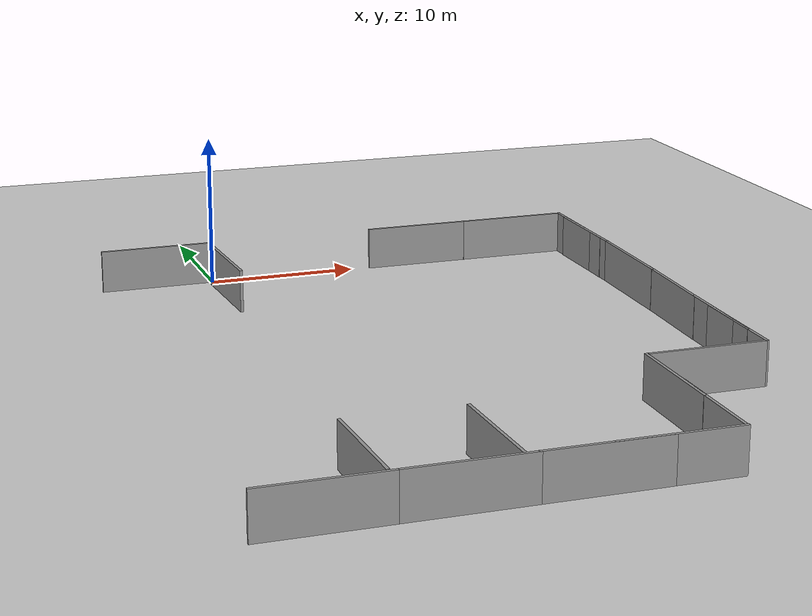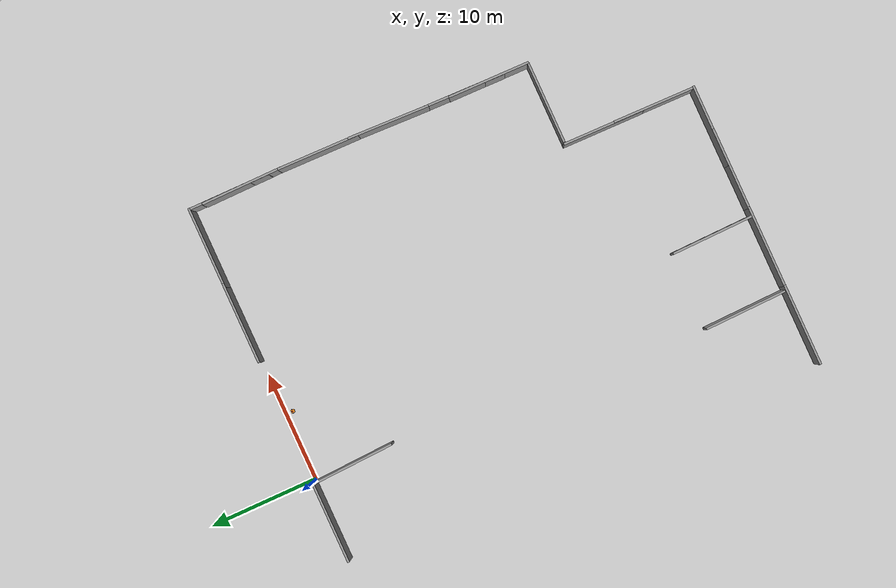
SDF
<sdf version="1.7">
 <world name="default">
  <model name="ground_plane">
   <static>1</static>
   <link name="link">
    <collision name="collision">
     <geometry><plane><normal>0 0 1</normal><size>100 100</size></plane></geometry>
     <surface><friction><ode><mu>100</mu><mu2>50</mu2></ode></friction></surface>
    </collision>
    <visual name="visual">
     <cast_shadows>0</cast_shadows>
     <geometry><plane><normal>0 0 1</normal><size>100 100</size></plane></geometry>
     <material>
      <script><uri>file://media/materials/scripts/gazebo.material</uri><name>Gazebo/Grey</name></script>
     </material>
    </visual>
   </link>
  </model>
  <model name="grey_wall">
   <static>1</static>
   <link name="link">
    <pose>0 0 1.4 0 -0 0</pose>
    <collision name="collision"><geometry><box><size>7.5 0.2 2.8</size></box></geometry></collision>
    <visual name="visual">
     <cast_shadows>0</cast_shadows>
     <geometry><box><size>7.5 0.2 2.8</size></box></geometry>
     <material>
      <script>
       <uri>model://grey_wall/materials/scripts</uri>
       <uri>model://grey_wall/materials/textures</uri>
       <name>vrc/grey_wall</name>
      </script>
     </material>
    </visual>
   </link>
   <pose>15.0322 -0.046799 0 0 -0 0</pose>
  </model>
  <model name="grey_wall_0">
   <static>1</static>
   <link name="link">
    <pose>0 0 1.4 0 -0 0</pose>
    <collision name="collision"><geometry><box><size>7.5 0.2 2.8</size></box></geometry></collision>
    <visual name="visual">
     <cast_shadows>0</cast_shadows>
     <geometry><box><size>7.5 0.2 2.8</size></box></geometry>
     <material>
      <script>
       <uri>model://grey_wall/materials/scripts</uri>
       <uri>model://grey_wall/materials/textures</uri>
       <name>vrc/grey_wall</name>
      </script>
     </material>
    </visual>
   </link>
   <pose>22.1133 -0.054691 0 0 -0 0</pose>
  </model>
  <model name="grey_wall_1">
   <static>1</static>
   <link name="link">
    <pose>0 0 1.4 0 -0 0</pose>
    <collision name="collision"><geometry><box><size>7.5 0.2 2.8</size></box></geometry></collision>
    <visual name="visual">
     <cast_shadows>0</cast_shadows>
     <geometry><box><size>7.5 0.2 2.8</size></box></geometry>
     <material>
      <script>
       <uri>model://grey_wall/materials/scripts</uri>
       <uri>model://grey_wall/materials/textures</uri>
       <name>vrc/grey_wall</name>
      </script>
     </material>
    </visual>
   </link>
   <pose>-3.81044 0.066326 0 0 -0 0</pose>
  </model>
  <model name="grey_wall_18">
   <static>1</static>
   <link name="link">
    <pose>0 0 1.4 0 -0 0</pose>
    <collision name="collision"><geometry><box><size>7.5 0.2 2.8</size></box></geometry></collision>
    <visual name="visual">
     <cast_shadows>0</cast_shadows>
     <geometry><box><size>7.5 0.2 2.8</size></box></geometry>
     <material>
      <script>
       <uri>model://grey_wall/materials/scripts</uri>
       <uri>model://grey_wall/materials/textures</uri>
       <name>vrc/grey_wall</name>
      </script>
     </material>
    </visual>
   </link>
   <pose>-5.17967 -43.942 0 0 -0 0</pose>
  </model>
  <model name="grey_wall_19">
   <static>1</static>
   <link name="link">
    <pose>0 0 1.4 0 -0 0</pose>
    <collision name="collision"><geometry><box><size>7.5 0.2 2.8</size></box></geometry></collision>
    <visual name="visual">
     <cast_shadows>0</cast_shadows>
     <geometry><box><size>7.5 0.2 2.8</size></box></geometry>
     <material>
      <script>
       <uri>model://grey_wall/materials/scripts</uri>
       <uri>model://grey_wall/materials/textures</uri>
       <name>vrc/grey_wall</name>
      </script>
     </material>
    </visual>
   </link>
   <pose>2.24043 -43.9352 0 0 -0 0</pose>
  </model>
  <model name="grey_wall_20">
   <static>1</static>
   <link name="link">
    <pose>0 0 1.4 0 -0 0</pose>
    <collision name="collision"><geometry><box><size>7.5 0.2 2.8</size></box></geometry></collision>
    <visual name="visual">
     <cast_shadows>0</cast_shadows>
     <geometry><box><size>7.5 0.2 2.8</size></box></geometry>
     <material>
      <script>
       <uri>model://grey_wall/materials/scripts</uri>
       <uri>model://grey_wall/materials/textures</uri>
       <name>vrc/grey_wall</name>
      </script>
     </material>
    </visual>
   </link>
   <pose>9.60015 -43.9275 0 0 -0 0</pose>
  </model>
  <model name="grey_wall_22">
   <static>1</static>
   <link name="link">
    <pose>0 0 1.4 0 -0 0</pose>
    <collision name="collision"><geometry><box><size>7.5 0.2 2.8</size></box></geometry></collision>
    <visual name="visual">
     <cast_shadows>0</cast_shadows>
     <geometry><box><size>7.5 0.2 2.8</size></box></geometry>
     <material>
      <script>
       <uri>model://grey_wall/materials/scripts</uri>
       <uri>model://grey_wall/materials/textures</uri>
       <name>vrc/grey_wall</name>
      </script>
     </material>
    </visual>
   </link>
   <pose>13.6683 -43.9149 0 0 -0 0</pose>
  </model>
  <model name="grey_wall_23">
   <static>1</static>
   <link name="link">
    <pose>0 0 1.4 0 -0 0</pose>
    <collision name="collision"><geometry><box><size>7.5 0.2 2.8</size></box></geometry></collision>
    <visual name="visual">
     <cast_shadows>0</cast_shadows>
     <geometry><box><size>7.5 0.2 2.8</size></box></geometry>
     <material>
      <script>
       <uri>model://grey_wall/materials/scripts</uri>
       <uri>model://grey_wall/materials/textures</uri>
       <name>vrc/grey_wall</name>
      </script>
     </material>
    </visual>
   </link>
   <pose>17.3477 -40.1778 0 0 0 -1.59017</pose>
  </model>
  <model name="grey_wall_24">
   <static>1</static>
   <link name="link">
    <pose>0 0 1.4 0 -0 0</pose>
    <collision name="collision"><geometry><box><size>7.5 0.2 2.8</size></box></geometry></collision>
    <visual name="visual">
     <cast_shadows>0</cast_shadows>
     <geometry><box><size>7.5 0.2 2.8</size></box></geometry>
     <material>
      <script>
       <uri>model://grey_wall/materials/scripts</uri>
       <uri>model://grey_wall/materials/textures</uri>
       <name>vrc/grey_wall</name>
      </script>
     </material>
    </visual>
   </link>
   <pose>25.2089 -28.1287 0 0 0 -1.5876</pose>
  </model>
  <model name="grey_wall_25">
   <static>1</static>
   <link name="link">
    <pose>0 0 1.4 0 -0 0</pose>
    <collision name="collision"><geometry><box><size>7.5 0.2 2.8</size></box></geometry></collision>
    <visual name="visual">
     <cast_shadows>0</cast_shadows>
     <geometry><box><size>7.5 0.2 2.8</size></box></geometry>
     <material>
      <script>
       <uri>model://grey_wall/materials/scripts</uri>
       <uri>model://grey_wall/materials/textures</uri>
       <name>vrc/grey_wall</name>
      </script>
     </material>
    </visual>
   </link>
   <pose>25.4883 -18.7407 0 0 0 -1.61009</pose>
  </model>
  <model name="grey_wall_26">
   <static>1</static>
   <link name="link">
    <pose>0 0 1.4 0 -0 0</pose>
    <collision name="collision"><geometry><box><size>7.5 0.2 2.8</size></box></geometry></collision>
    <visual name="visual">
     <cast_shadows>0</cast_shadows>
     <geometry><box><size>7.5 0.2 2.8</size></box></geometry>
     <material>
      <script>
       <uri>model://grey_wall/materials/scripts</uri>
       <uri>model://grey_wall/materials/textures</uri>
       <name>vrc/grey_wall</name>
      </script>
     </material>
    </visual>
   </link>
   <pose>25.6675 -12.1685 0 0 0 -1.59098</pose>
  </model>
  <model name="grey_wall_27">
   <static>1</static>
   <link name="link">
    <pose>0 0 1.4 0 -0 0</pose>
    <collision name="collision"><geometry><box><size>7.5 0.2 2.8</size></box></geometry></collision>
    <visual name="visual">
     <cast_shadows>0</cast_shadows>
     <geometry><box><size>7.5 0.2 2.8</size></box></geometry>
     <material>
      <script>
       <uri>model://grey_wall/materials/scripts</uri>
       <uri>model://grey_wall/materials/textures</uri>
       <name>vrc/grey_wall</name>
      </script>
     </material>
    </visual>
   </link>
   <pose>25.2654 -25.8422 -0 0 0 -1.59708</pose>
  </model>
  <model name="grey_wall_28">
   <static>1</static>
   <link name="link">
    <pose>0 0 1.4 0 -0 0</pose>
    <collision name="collision"><geometry><box><size>7.5 0.2 2.8</size></box></geometry></collision>
    <visual name="visual">
     <cast_shadows>0</cast_shadows>
     <geometry><box><size>7.5 0.2 2.8</size></box></geometry>
     <material>
      <script>
       <uri>model://grey_wall/materials/scripts</uri>
       <uri>model://grey_wall/materials/textures</uri>
       <name>vrc/grey_wall</name>
      </script>
     </material>
    </visual>
   </link>
   <pose>25.7264 -5.00568 0 0 0 -1.56465</pose>
  </model>
  <model name="grey_wall_29">
   <static>1</static>
   <link name="link">
    <pose>0 0 1.4 0 -0 0</pose>
    <collision name="collision"><geometry><box><size>7.5 0.2 2.8</size></box></geometry></collision>
    <visual name="visual">
     <cast_shadows>0</cast_shadows>
     <geometry><box><size>7.5 0.2 2.8</size></box></geometry>
     <material>
      <script>
       <uri>model://grey_wall/materials/scripts</uri>
       <uri>model://grey_wall/materials/textures</uri>
       <name>vrc/grey_wall</name>
      </script>
     </material>
    </visual>
   </link>
   <pose>25.7392 -3.78871 0 0 0 -1.5746</pose>
  </model>
  <model name="grey_wall_0_clone">
   <static>1</static>
   <link name="link">
    <pose>0 0 1.4 0 -0 0</pose>
    <collision name="collision"><geometry><box><size>7.5 0.2 2.8</size></box></geometry></collision>
    <visual name="visual">
     <cast_shadows>0</cast_shadows>
     <geometry><box><size>7.5 0.2 2.8</size></box></geometry>
     <material>
      <script>
       <uri>model://grey_wall/materials/scripts</uri>
       <uri>model://grey_wall/materials/textures</uri>
       <name>vrc/grey_wall</name>
      </script>
     </material>
    </visual>
   </link>
   <pose>-0.004746 -3.78034 0 0 -0 1.61431</pose>
  </model>
  <model name="grey_wall_0_clone_0">
   <static>1</static>
   <link name="link">
    <pose>0 0 1.4 0 -0 0</pose>
    <collision name="collision"><geometry><box><size>7.5 0.2 2.8</size></box></geometry></collision>
    <visual name="visual">
     <cast_shadows>0</cast_shadows>
     <geometry><box><size>7.5 0.2 2.8</size></box></geometry>
     <material>
      <script>
       <uri>model://grey_wall/materials/scripts</uri>
       <uri>model://grey_wall/materials/textures</uri>
       <name>vrc/grey_wall</name>
      </script>
     </material>
    </visual>
   </link>
   <pose>-1.99454 -40.0297 0 0 0 -1.54883</pose>
  </model>
  <model name="grey_wall_0_clone_2">
   <static>1</static>
   <link name="link">
    <pose>0 0 1.4 0 -0 0</pose>
    <collision name="collision"><geometry><box><size>7.5 0.2 2.8</size></box></geometry></collision>
    <visual name="visual">
     <cast_shadows>0</cast_shadows>
     <geometry><box><size>7.5 0.2 2.8</size></box></geometry>
     <material>
      <script>
       <uri>model://grey_wall/materials/scripts</uri>
       <uri>model://grey_wall/materials/textures</uri>
       <name>vrc/grey_wall</name>
      </script>
     </material>
    </visual>
   </link>
   <pose>5.06533 -40.1129 0 0 0 -1.55365</pose>
  </model>
  <model name="grey_wall_0_clone_3">
   <static>1</static>
   <link name="link">
    <pose>0 0 1.4 0 -0 0</pose>
    <collision name="collision"><geometry><box><size>7.5 0.2 2.8</size></box></geometry></collision>
    <visual name="visual">
     <cast_shadows>0</cast_shadows>
     <geometry><box><size>7.5 0.2 2.8</size></box></geometry>
     <material>
      <script>
       <uri>model://grey_wall/materials/scripts</uri>
       <uri>model://grey_wall/materials/textures</uri>
       <name>vrc/grey_wall</name>
      </script>
     </material>
    </visual>
   </link>
   <pose>21.3631 -31.8085 0 0 -0 0</pose>
  </model>
  <model name="grey_wall_0_clone_4">
   <static>1</static>
   <link name="link">
    <pose>0 0 1.4 0 -0 0</pose>
    <collision name="collision"><geometry><box><size>7.5 0.2 2.8</size></box></geometry></collision>
    <visual name="visual">
     <cast_shadows>0</cast_shadows>
     <geometry><box><size>7.5 0.2 2.8</size></box></geometry>
     <material>
      <script>
       <uri>model://grey_wall/materials/scripts</uri>
       <uri>model://grey_wall/materials/textures</uri>
       <name>vrc/grey_wall</name>
      </script>
     </material>
    </visual>
   </link>
   <pose>17.4099 -35.4442 0 0 -0 1.55383</pose>
  </model>
  <model name="my_bot">
   <link name="base_link">
    <inertial>
     <pose>0.055714 0 0.078571 0 -0 0</pose>
     <mass>0.7</mass>
     <inertia>
      <ixx>0.0064169</ixx>
      <ixy>0</ixy>
      <ixz>0.00118929</ixz>
      <iyy>0.00745405</iyy>
      <iyz>0</iyz>
      <izz>0.00876214</izz>
     </inertia>
    </inertial>
    <collision name="base_link_fixed_joint_lump__chassis_collision">
     <pose>0.05 0 0.075 0 -0 0</pose>
     <geometry><box><size>0.3 0.3 0.15</size></box></geometry>
    </collision>
    <collision name="base_link_fixed_joint_lump__caster_wheel_collision_1">
     <pose>0.14 0 0 0 -0 0</pose>
     <geometry><sphere><radius>0.05</radius></sphere></geometry>
     <surface><friction><ode><mu>0.001</mu><mu2>0.001</mu2></ode></friction></surface>
    </collision>
    <collision name="base_link_fixed_joint_lump__laser_frame_collision_2">
     <pose>0 0 0.175 0 -0 0</pose>
     <geometry><cylinder><length>0.04</length><radius>0.05</radius></cylinder></geometry>
    </collision>
    <visual name="base_link_fixed_joint_lump__chassis_visual">
     <pose>0.05 0 0.075 0 -0 0</pose>
     <geometry><box><size>0.3 0.3 0.15</size></box></geometry>
     <material>
      <script><name>Gazebo/Orange</name><uri>file://media/materials/scripts/gazebo.material</uri></script>
     </material>
    </visual>
    <visual name="base_link_fixed_joint_lump__camera_link_visual_1">
     <pose>0.205 0 0.08 0 -0 0</pose>
     <geometry><box><size>0.01 0.03 0.03</size></box></geometry>
     <material>
      <script><name>Gazebo/Red</name><uri>file://media/materials/scripts/gazebo.material</uri></script>
     </material>
    </visual>
    <visual name="base_link_fixed_joint_lump__caster_wheel_visual_2">
     <pose>0.14 0 0 0 -0 0</pose>
     <geometry><sphere><radius>0.05</radius></sphere></geometry>
     <material>
      <script><name>Gazebo/White</name><uri>file://media/materials/scripts/gazebo.material</uri></script>
     </material>
    </visual>
    <visual name="base_link_fixed_joint_lump__laser_frame_visual_3">
     <pose>0 0 0.175 0 -0 0</pose>
     <geometry><cylinder><length>0.04</length><radius>0.05</radius></cylinder></geometry>
     <material>
      <script><name>Gazebo/Red</name><uri>file://media/materials/scripts/gazebo.material</uri></script>
     </material>
    </visual>
    <sensor name="camera" type="camera">
     <visualize>1</visualize>
     <update_rate>10</update_rate>
     <camera>
      <horizontal_fov>1.089</horizontal_fov>
      <image><format>R8G8B8</format><width>640</width><height>480</height></image>
      <clip><near>0.05</near><far>15</far></clip>
     </camera>
     <plugin name="camera_controller" filename="libgazebo_ros_camera.so">
      <frame_name>camera_link_optical</frame_name>
     </plugin>
     <pose>0.205 0 0.08 0 -0 0</pose>
    </sensor>
    <sensor name="laser" type="ray">
     <visualize>1</visualize>
     <update_rate>10</update_rate>
     <ray>
      <scan>
       <horizontal>
        <samples>360</samples>
        <min_angle>-3.14</min_angle>
        <max_angle>3.14</max_angle>
        <resolution>1</resolution>
       </horizontal>
       <vertical><samples>1</samples><min_angle>0</min_angle><max_angle>0</max_angle></vertical>
      </scan>
      <range><min>0.3</min><max>12</max></range>
     </ray>
     <plugin name="laser_controller" filename="libgazebo_ros_ray_sensor.so">
      <ros><argument>~/out:=scan</argument></ros>
      <output_type>sensor_msgs/LaserScan</output_type>
      <frame_name>laser_frame</frame_name>
     </plugin>
     <pose>0 0 0.175 0 -0 0</pose>
    </sensor>
   </link>
   <joint name="left_wheel_joint" type="revolute">
    <pose relative_to="base_link">0 0.175 0 -1.5708 0 0</pose>
    <parent>base_link</parent>
    <child>left_wheel</child>
    <axis>
     <xyz>0 0 1</xyz>
     <limit><lower>-1e+16</lower><upper>1e+16</upper></limit>
     <dynamics><spring_reference>0</spring_reference><spring_stiffness>0</spring_stiffness></dynamics>
    </axis>
   </joint>
   <link name="left_wheel">
    <pose relative_to="left_wheel_joint">0 0 0 0 -0 0</pose>
    <inertial>
     <mass>0.1</mass>
     <inertia>
      <ixx>7.58333e-05</ixx>
      <ixy>0</ixy>
      <ixz>0</ixz>
      <iyy>7.58333e-05</iyy>
      <iyz>0</iyz>
      <izz>0.000125</izz>
     </inertia>
    </inertial>
    <collision name="left_wheel_collision">
     <geometry><cylinder><length>0.04</length><radius>0.05</radius></cylinder></geometry>
    </collision>
    <visual name="left_wheel_visual">
     <geometry><cylinder><length>0.04</length><radius>0.05</radius></cylinder></geometry>
     <material>
      <script><name>Gazebo/Blue</name><uri>file://media/materials/scripts/gazebo.material</uri></script>
     </material>
    </visual>
   </link>
   <joint name="right_wheel_joint" type="revolute">
    <pose relative_to="base_link">0 -0.175 0 1.5708 -0 0</pose>
    <parent>base_link</parent>
    <child>right_wheel</child>
    <axis>
     <xyz>0 0 -1</xyz>
     <limit><lower>-1e+16</lower><upper>1e+16</upper></limit>
     <dynamics><spring_reference>0</spring_reference><spring_stiffness>0</spring_stiffness></dynamics>
    </axis>
   </joint>
   <link name="right_wheel">
    <pose relative_to="right_wheel_joint">0 0 0 0 -0 0</pose>
    <inertial>
     <mass>0.1</mass>
     <inertia>
      <ixx>7.58333e-05</ixx>
      <ixy>0</ixy>
      <ixz>0</ixz>
      <iyy>7.58333e-05</iyy>
      <iyz>0</iyz>
      <izz>0.000125</izz>
     </inertia>
    </inertial>
    <collision name="right_wheel_collision">
     <geometry><cylinder><length>0.04</length><radius>0.05</radius></cylinder></geometry>
    </collision>
    <visual name="right_wheel_visual">
     <geometry><cylinder><length>0.04</length><radius>0.05</radius></cylinder></geometry>
     <material>
      <script><name>Gazebo/Blue</name><uri>file://media/materials/scripts/gazebo.material</uri></script>
     </material>
    </visual>
   </link>
   <static>0</static>
   <plugin name="diff_drive" filename="libgazebo_ros_diff_drive.so">
    <left_joint>left_wheel_joint</left_joint>
    <right_joint>right_wheel_joint</right_joint>
    <wheel_separation>0.297</wheel_separation>
    <wheel_diameter>0.066</wheel_diameter>
    <max_wheel_torque>200</max_wheel_torque>
    <max_wheel_acceleration>10.0</max_wheel_acceleration>
    <odometry_frame>odom</odometry_frame>
    <robot_base_frame>base_link</robot_base_frame>
    <publish_odom>1</publish_odom>
    <publish_odom_tf>1</publish_odom_tf>
    <publish_wheel_tf>1</publish_wheel_tf>
   </plugin>
   <pose>6.25753 -0.562591 0.050001 3e-06 5e-06 -1.613</pose>
  </model>
 </world>
</sdf>
